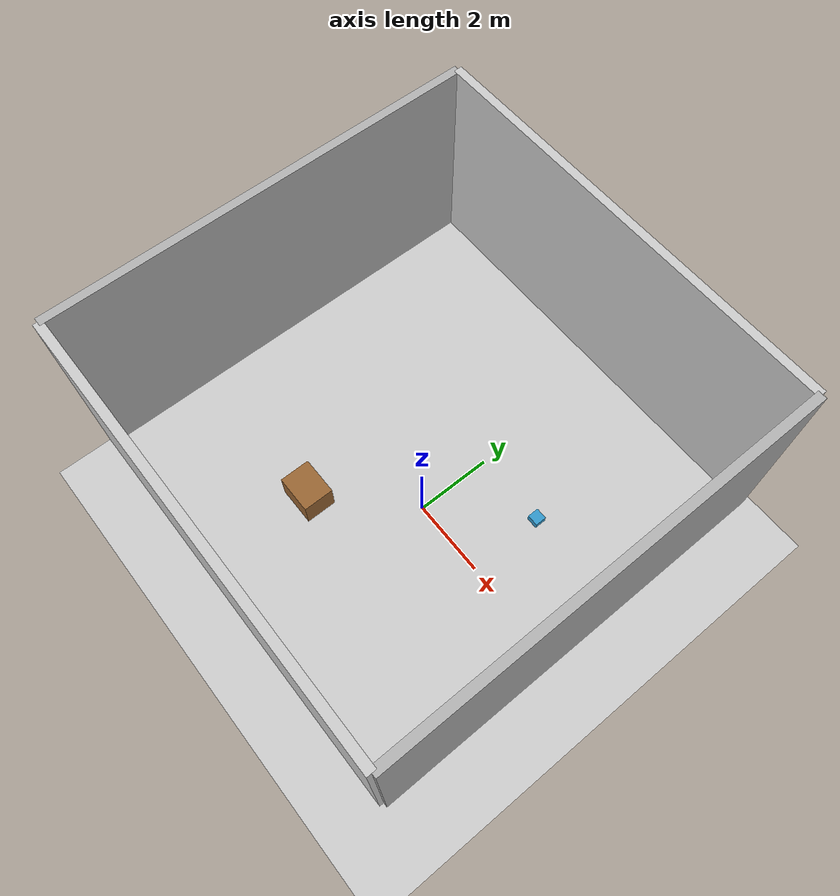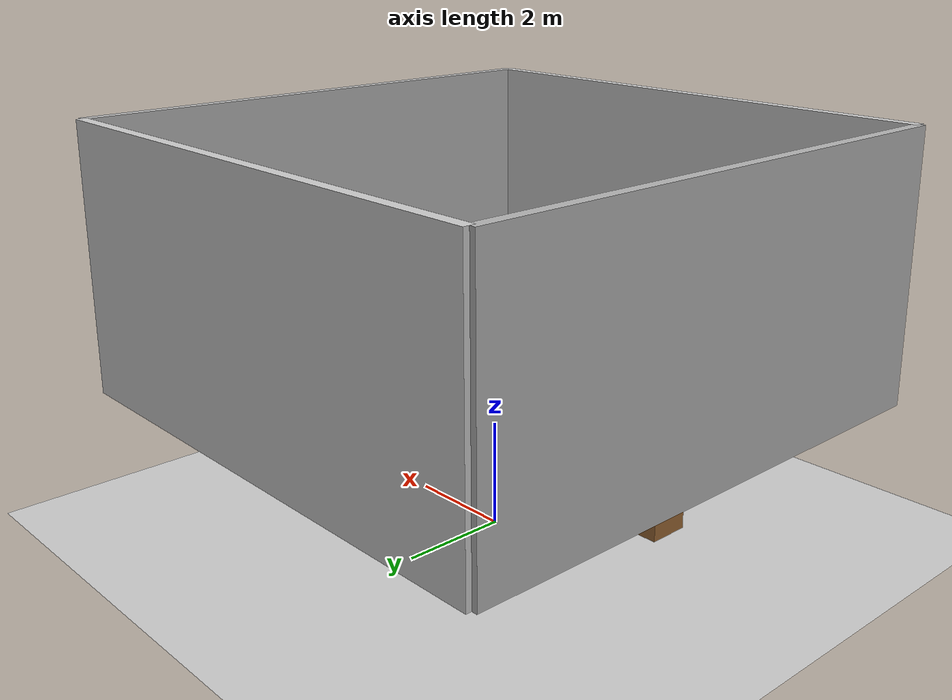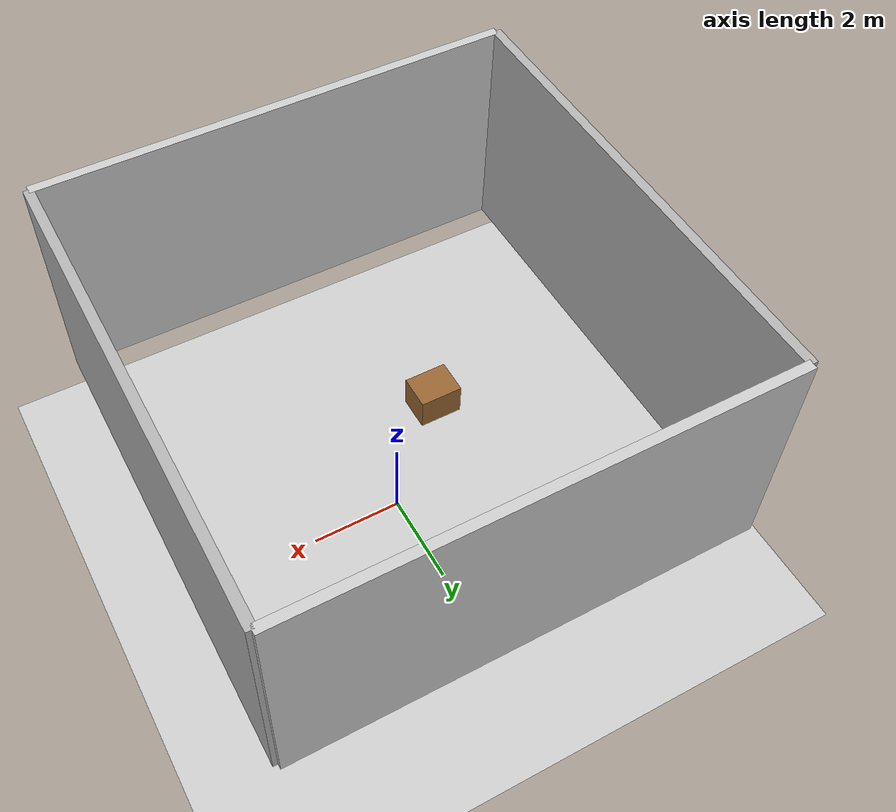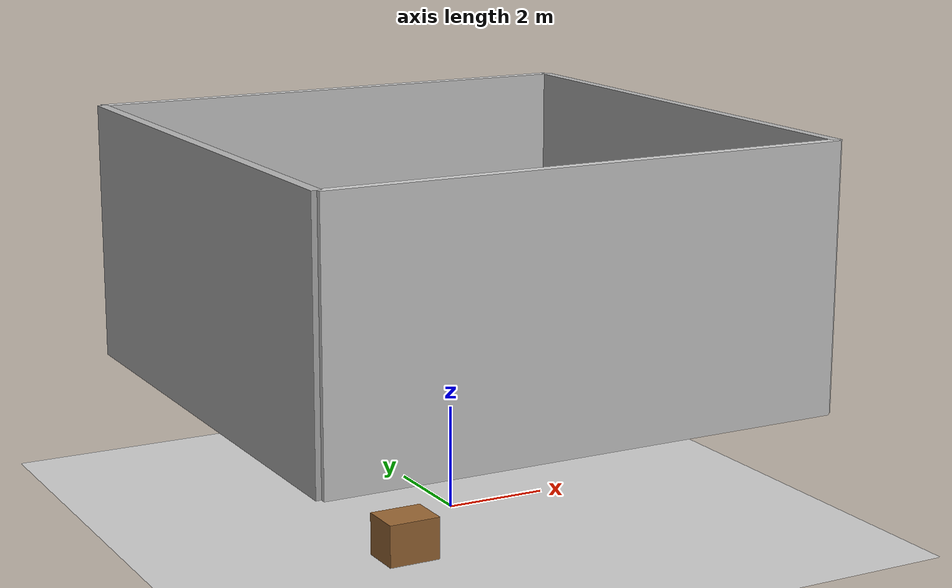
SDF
<?xml version="1.0" ?>
<sdf version="1.7">
  <world name="basic_room">
    <!-- Include the sun -->
    <include>
      <uri>model://sun</uri>
    </include>

    <!-- Ground plane -->
    <include>
      <uri>model://ground_plane</uri>
    </include>

    <!-- Basic room with walls -->
    <model name="room_walls">
      <pose>0 0 2.5 0 0 0</pose>
      <static>true</static>

      <!-- Back wall -->
      <link name="back_wall">
        <pose>0 -5 2.5 0 0 0</pose>
        <collision name="back_wall_collision">
          <geometry>
            <box>
              <size>10 0.2 5</size>
            </box>
          </geometry>
        </collision>
        <visual name="back_wall_visual">
          <geometry>
            <box>
              <size>10 0.2 5</size>
            </box>
          </geometry>
          <material>
            <ambient>0.8 0.8 0.8 1</ambient>
            <diffuse>0.8 0.8 0.8 1</diffuse>
          </material>
        </visual>
      </link>

      <!-- Front wall -->
      <link name="front_wall">
        <pose>0 5 2.5 0 0 3.14159</pose>
        <collision name="front_wall_collision">
          <geometry>
            <box>
              <size>10 0.2 5</size>
            </box>
          </geometry>
        </collision>
        <visual name="front_wall_visual">
          <geometry>
            <box>
              <size>10 0.2 5</size>
            </box>
          </geometry>
          <material>
            <ambient>0.8 0.8 0.8 1</ambient>
            <diffuse>0.8 0.8 0.8 1</diffuse>
          </material>
        </visual>
      </link>

      <!-- Left wall -->
      <link name="left_wall">
        <pose>-5 0 2.5 0 0 1.5708</pose>
        <collision name="left_wall_collision">
          <geometry>
            <box>
              <size>10 0.2 5</size>
            </box>
          </geometry>
        </collision>
        <visual name="left_wall_visual">
          <geometry>
            <box>
              <size>10 0.2 5</size>
            </box>
          </geometry>
          <material>
            <ambient>0.7 0.7 0.7 1</ambient>
            <diffuse>0.7 0.7 0.7 1</diffuse>
          </material>
        </visual>
      </link>

      <!-- Right wall -->
      <link name="right_wall">
        <pose>5 0 2.5 0 0 -1.5708</pose>
        <collision name="right_wall_collision">
          <geometry>
            <box>
              <size>10 0.2 5</size>
            </box>
          </geometry>
        </collision>
        <visual name="right_wall_visual">
          <geometry>
            <box>
              <size>10 0.2 5</size>
            </box>
          </geometry>
          <material>
            <ambient>0.7 0.7 0.7 1</ambient>
            <diffuse>0.7 0.7 0.7 1</diffuse>
          </material>
        </visual>
      </link>
    </model>

    <!-- A few simple objects for the robot to interact with -->
    <model name="table">
      <pose>-2 -2 0.4 0 0 0</pose>
      <link name="table_top">
        <collision name="table_collision">
          <geometry>
            <box>
              <size>1.0 0.8 0.8</size>
            </box>
          </geometry>
        </collision>
        <visual name="table_visual">
          <geometry>
            <box>
              <size>1.0 0.8 0.8</size>
            </box>
          </geometry>
          <material>
            <ambient>0.6 0.4 0.2 1</ambient>
            <diffuse>0.6 0.4 0.2 1</diffuse>
          </material>
        </visual>
      </link>
    </model>

    <model name="box">
      <pose>2 2 0.1 0 0 0</pose>
      <link name="box_link">
        <collision name="box_collision">
          <geometry>
            <box>
              <size>0.3 0.3 0.2</size>
            </box>
          </geometry>
        </collision>
        <visual name="box_visual">
          <geometry>
            <box>
              <size>0.3 0.3 0.2</size>
            </box>
          </geometry>
          <material>
            <ambient>0.2 0.6 0.8 1</ambient>
            <diffuse>0.2 0.6 0.8 1</diffuse>
          </material>
        </visual>
      </link>
    </model>
  </world>
</sdf>
